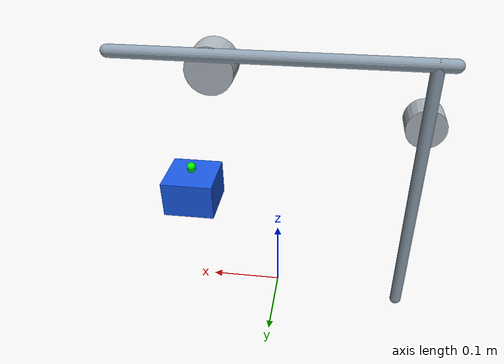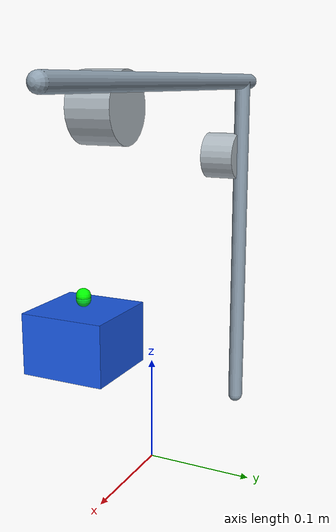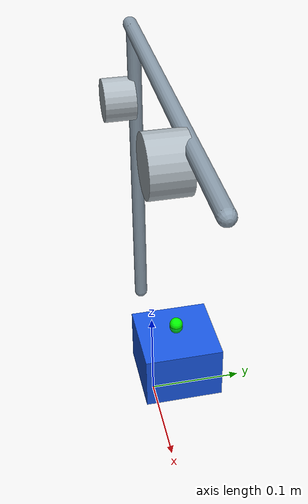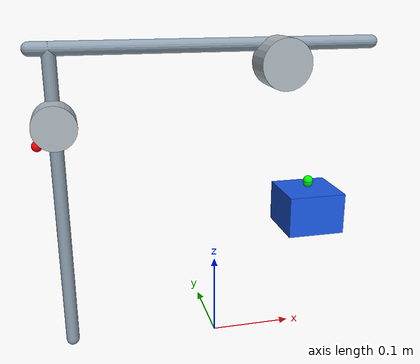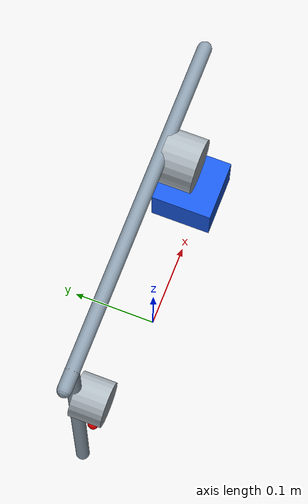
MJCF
<mujoco model="cable_demo_cpp_plugin_reverse_reserve_release">
  <compiler autolimits="true" angle="radian" />
  <size nuser_site="1" />
  <option timestep="0.001" gravity="0 0 -9.81" integrator="implicitfast" />

  <extension>
    <plugin plugin="mujoco.cable.unilateral">
      <instance name="release_cable">
        <config key="stiffness" value="430.0" />
        <config key="damping" value="3.0" />
        <config key="slack" value="0.0005" />
        <config key="home_length" value="auto_initial" />
        <config key="pretension_offset" value="0.006" />
        <config key="max_tension" value="45.0" />
        <config key="ctrl_mode" value="joint_spool_angle" />
        <config key="spool_radius" value="0.025" />
        <config key="spool_joint" value="winch_hinge" />
        <config key="spool_reserve_length" value="0.035" />
        <config key="spool_reserve_direction" value="negative" />
        <config key="route_mode" value="surface" />
        <config key="route_tendon" value="reserve_release_cable_seed" />
        <config key="wrap_geoms" value="winch_drum_visual top_pulley_visual" />
        <config key="site_role_user_index" value="0" />
        <config key="visual_width" value="2" />
      </instance>
    </plugin>
  </extension>

  <asset>
    <material name="mat_frame" rgba="0.55 0.62 0.68 1" />
    <material name="mat_payload" rgba="0.1 0.35 0.9 1" />
    <material name="mat_pulley" rgba="0.68 0.72 0.75 1" />
    <material name="mat_anchor" rgba="1.0 0.05 0.02 1" />
  </asset>

  <worldbody>
    <light name="key" pos="0 -1 1" dir="0 1 -1" />
    <camera name="overview" pos="0 -0.62 0.20" xyaxes="1 0 0 0 0 1" />

    <geom name="left_post" type="capsule" fromto="-0.18 0.02 0 -0.18 0.02 0.36" size="0.008" material="mat_frame" contype="0" conaffinity="0" />
    <geom name="top_beam" type="capsule" fromto="-0.2 0.02 0.36 0.2 0.02 0.36" size="0.008" material="mat_frame" contype="0" conaffinity="0" />

    <body name="winch_spool" pos="-0.18 0 0.28">
      <joint name="winch_hinge" type="hinge" axis="0 1 0" damping="0.04" armature="0.0004" />
      <geom name="winch_drum_visual" type="cylinder" euler="1.57079632679 0 0" size="0.025 0.018" material="mat_pulley" contype="0" conaffinity="0" />
      <geom name="winch_anchor_visual" type="sphere" pos="-0.01968 -0.008 -0.01992" size="0.0055" material="mat_anchor" contype="0" conaffinity="0" />
      <site name="site_spool_anchor" pos="-0.01968 -0.008 -0.01992" size="0.006" rgba="1 0 0 1" user="1" />
      <site name="site_spool_wrap_lower" pos="0 0 -0.030" size="0.0001" rgba="1 0.8 0 0" user="2" />
    </body>

    <geom name="top_pulley_visual" type="cylinder" pos="0.08 0 0.34" euler="1.57079632679 0 0" size="0.03 0.020" material="mat_pulley" contype="0" conaffinity="0" />
    <site name="site_top_pulley_side_upper" pos="0.08 0 0.375" size="0.0001" rgba="1 0.8 0 0" user="2" />

    <body name="load" pos="0.12 0 0.16">
      <freejoint name="load_free" />
      <geom name="load_mass" type="box" size="0.035 0.035 0.025" mass="0.3" material="mat_payload" />
      <geom name="load_hook_visual" type="sphere" pos="0 0 0.032" size="0.006" rgba="0 0.85 0.15 1" contype="0" conaffinity="0" />
      <site name="site_load_hook" pos="0 0 0.035" size="0.006" rgba="0 1 0 1" user="1" />
    </body>
  </worldbody>

  <tendon>
    <spatial name="reserve_release_cable_seed" limited="false" width="0.000000001" rgba="1.0 0.35 0.05 0.95">
      <site site="site_spool_anchor" />
      <site site="site_spool_wrap_lower" />
      <site site="site_top_pulley_side_upper" />
      <site site="site_load_hook" />
    </spatial>
  </tendon>

  <actuator>
    <velocity name="winch_motor" joint="winch_hinge" kv="1.5" ctrlrange="-0.25 0.25" />
    <plugin name="reserve_release_cable_actuator" tendon="reserve_release_cable_seed" gear="0" instance="release_cable" />
  </actuator>

  <sensor>
    <plugin name="reserve_release_cable_state" instance="release_cable" />
  </sensor>
</mujoco>
